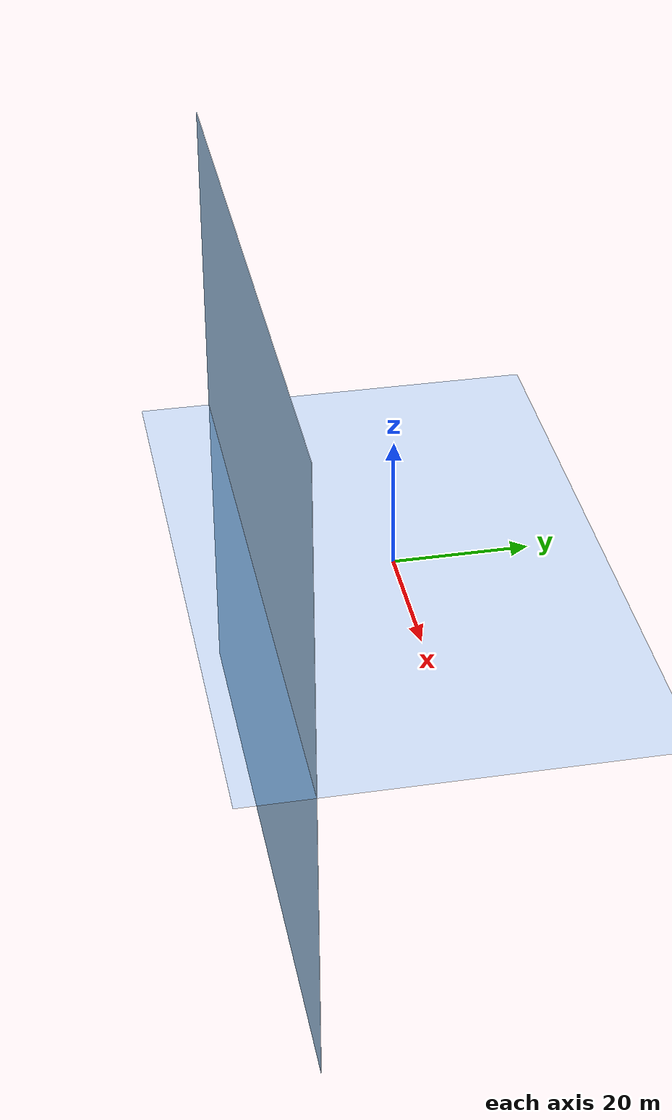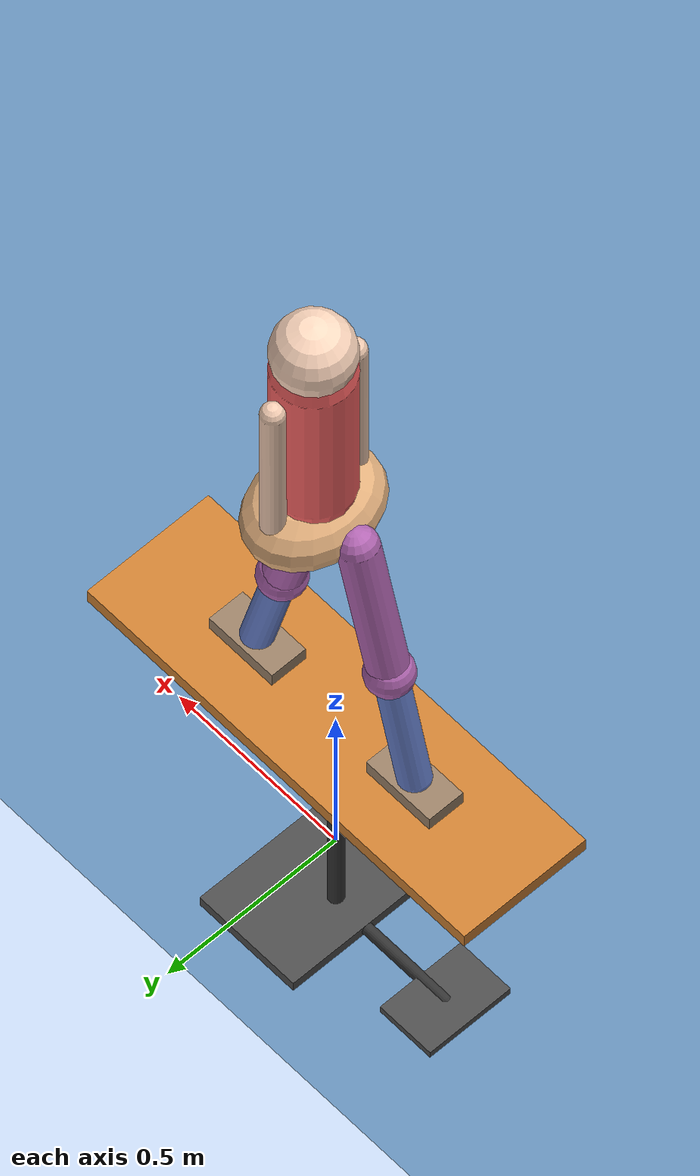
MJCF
<mujoco model="rider_independent_legs">
  <compiler angle="radian"/>
  <option timestep="0.01" gravity="0 0 -9.81"/>

  <visual>
    <global offwidth="640" offheight="480"/>
    <rgba haze="0.3 0.5 0.7 1"/>
    <headlight ambient="0.4 0.4 0.4" diffuse="0.6 0.6 0.6" specular="0.2 0.2 0.2"/>
  </visual>

  <default>
    <geom contype="0" conaffinity="0"/>
    <joint damping="20"/>
  </default>

  <asset>
    <material name="board" rgba="0.8 0.5 0.2 1"/>
    <material name="foot" rgba="0.6 0.5 0.4 1"/>
    <material name="shin" rgba="0.4 0.5 0.8 1"/>
    <material name="thigh" rgba="0.7 0.4 0.7 1"/>
    <material name="pelvis" rgba="0.9 0.7 0.5 1"/>
    <material name="torso" rgba="1.0 0.4 0.4 1"/>
    <material name="arm" rgba="0.95 0.8 0.7 1"/>
    <material name="head" rgba="1.0 0.85 0.75 1"/>
    <material name="water" rgba="0.4 0.7 1.0 0.1"/>
    <material name="sky" rgba="0.7 0.85 1.0 1"/>
    <material name="mast" rgba="0.2 0.2 0.2 1"/>
    <material name="foil" rgba="0.3 0.3 0.3 1"/>
  </asset>

  <worldbody>
    <camera name="side" pos="0 4 1.2" xyaxes="-1 0 0 0 0 1"/>
    <camera name="front" pos="4 0 1.2" xyaxes="0 1 0 0 0 1"/>
    <camera name="quarter" pos="3 3 2.0" xyaxes="-0.7 0.7 0 0 0 1"/>
    <camera name="top" pos="0 0 4" xyaxes="1 0 0 0 1 0"/>

    <!-- Water surface -->
    <geom name="water" type="plane" pos="0 0 -0.30" size="50 50 0.1" material="water"/>
    <!-- Horizon/sky backdrop -->
    <geom name="sky" type="plane" pos="0 -20 0" size="50 50 0.1" euler="1.57 0 0" material="sky"/>

    <!-- BOARD -->
    <body name="board" pos="0 0 0.5">
      <freejoint name="root"/>
      <geom name="board_geom" type="box" size="0.6 0.18 0.02" mass="6" material="board"/>

      <!-- FOIL ASSEMBLY (visual only) -->
      <geom name="mast" type="capsule" fromto="0 0 -0.02 0 0 -0.75" size="0.02" mass="0.1" material="mast"/>
      <geom name="front_wing" type="box" pos="0.05 0 -0.75" size="0.15 0.22 0.015" mass="0.1" material="foil"/>
      <geom name="fuselage" type="capsule" fromto="0.05 0 -0.75 -0.35 0 -0.75" size="0.015" mass="0.1" material="mast"/>
      <geom name="stabilizer" type="box" pos="-0.35 0 -0.75" size="0.08 0.12 0.01" mass="0.1" material="foil"/>

      <!-- Tracking cameras -->
      <camera name="track_side" pos="0 5 0.5" xyaxes="-1 0 0 0 0 1" mode="trackcom"/>
      <camera name="track_quarter" pos="2 4 1.0" xyaxes="-0.6 0.8 0 0 0 1" mode="trackcom"/>

      <!-- ===== FRONT LEG (at +X, nose of board) ===== -->
      <body name="front_foot" pos="0.25 0 0.04">
        <geom name="front_foot_geom" type="box" size="0.10 0.05 0.02" mass="1" material="foot"/>

        <body name="front_shin" pos="0 0 0.02">
          <joint name="front_ankle" type="hinge" axis="0 1 0" range="-0.4 0.4"/>
          <geom name="front_shin_geom" type="capsule" fromto="0 0 0 -0.08 0 0.34" size="0.04" mass="4" material="shin"/>
          <geom name="front_knee_geom" type="sphere" pos="-0.08 0 0.34" size="0.06" mass="0.5" material="thigh"/>

          <body name="front_thigh" pos="-0.08 0 0.34">
            <joint name="front_knee" type="hinge" axis="0 1 0" range="-1.5 0.2"/>
            <geom name="front_thigh_geom" type="capsule" fromto="0 0 0 -0.10 0 0.40" size="0.05" mass="6" material="thigh"/>

            <!-- Pelvis (upper body attaches here) -->
            <body name="pelvis" pos="-0.10 0 0.40">
              <joint name="front_hip" type="hinge" axis="0 1 0" range="-1.0 1.5"/>
              <geom name="pelvis_geom" type="ellipsoid" size="0.14 0.18 0.10" mass="15" material="pelvis"/>

              <site name="pelvis_back_attach" pos="-0.15 0 0" size="0.02"/>

              <!-- TORSO -->
              <body name="torso" pos="0 0 0.10">
                <joint name="waist" type="hinge" axis="0 1 0" range="-0.5 0.5"/>
                <geom name="torso_geom" type="capsule" fromto="0 0 0 0 0 0.45" size="0.10" mass="25" material="torso"/>

                <!-- HEAD -->
                <body name="head" pos="0 0 0.52">
                  <geom name="head_geom" type="sphere" size="0.10" mass="5" material="head"/>
                </body>

                <!-- LEFT ARM -->
                <body name="left_arm" pos="0 0.12 0.40">
                  <joint name="left_shoulder" type="hinge" axis="0 1 0" range="-2.0 2.0"/>
                  <geom name="left_arm_geom" type="capsule" fromto="0 0 0 0 0 -0.55" size="0.03" mass="4" material="arm"/>
                </body>

                <!-- RIGHT ARM -->
                <body name="right_arm" pos="0 -0.12 0.40">
                  <joint name="right_shoulder" type="hinge" axis="0 1 0" range="-2.0 2.0"/>
                  <geom name="right_arm_geom" type="capsule" fromto="0 0 0 0 0 -0.55" size="0.03" mass="4" material="arm"/>
                </body>
              </body>
            </body>
          </body>
        </body>
      </body>

      <!-- ===== BACK LEG (at -X, tail of board) ===== -->
      <body name="back_foot" pos="-0.25 0 0.04">
        <geom name="back_foot_geom" type="box" size="0.10 0.05 0.02" mass="1" material="foot"/>

        <body name="back_shin" pos="0 0 0.02">
          <joint name="back_ankle" type="hinge" axis="0 1 0" range="-0.4 0.4"/>
          <geom name="back_shin_geom" type="capsule" fromto="0 0 0 0.08 0 0.34" size="0.04" mass="4" material="shin"/>
          <geom name="back_knee_geom" type="sphere" pos="0.08 0 0.34" size="0.06" mass="0.5" material="thigh"/>

          <body name="back_thigh" pos="0.08 0 0.34">
            <joint name="back_knee" type="hinge" axis="0 1 0" range="-1.5 0.2"/>
            <geom name="back_thigh_geom" type="capsule" fromto="0 0 0 0.10 0 0.40" size="0.05" mass="6" material="thigh"/>

            <!-- Back hip connection point -->
            <body name="back_hip_point" pos="0.10 0 0.40">
              <joint name="back_hip" type="hinge" axis="0 1 0" range="-1.0 1.5"/>
              <geom name="back_hip_geom" type="sphere" size="0.05" mass="1" rgba="0.7 0.5 0.3 0"/>
              <site name="back_hip_attach" pos="0 0 0" size="0.02"/>
            </body>
          </body>
        </body>
      </body>

    </body>
  </worldbody>

  <!-- Constrain back leg to follow pelvis (closed kinematic chain) -->
  <equality>
    <connect body1="back_hip_point" body2="pelvis" anchor="0 0 0"/>
  </equality>

  <!-- NO TENDONS - legs move independently! -->

  <!-- Actuators for ALL leg joints (front AND back) -->
  <actuator>
    <!-- Front leg -->
    <position name="front_ankle_act" joint="front_ankle" kp="200" ctrlrange="-0.4 0.4"/>
    <position name="front_knee_act" joint="front_knee" kp="300" ctrlrange="-1.5 0.2"/>
    <position name="front_hip_act" joint="front_hip" kp="400" ctrlrange="-1.0 1.5"/>

    <!-- Back leg (INDEPENDENT control) -->
    <position name="back_ankle_act" joint="back_ankle" kp="200" ctrlrange="-0.4 0.4"/>
    <position name="back_knee_act" joint="back_knee" kp="300" ctrlrange="-1.5 0.2"/>
    <position name="back_hip_act" joint="back_hip" kp="400" ctrlrange="-1.0 1.5"/>

    <!-- Upper body -->
    <position name="waist_act" joint="waist" kp="300" ctrlrange="-0.5 0.5"/>
    <position name="left_shoulder_act" joint="left_shoulder" kp="100" ctrlrange="-2.0 2.0"/>
    <position name="right_shoulder_act" joint="right_shoulder" kp="100" ctrlrange="-2.0 2.0"/>
  </actuator>
</mujoco>
